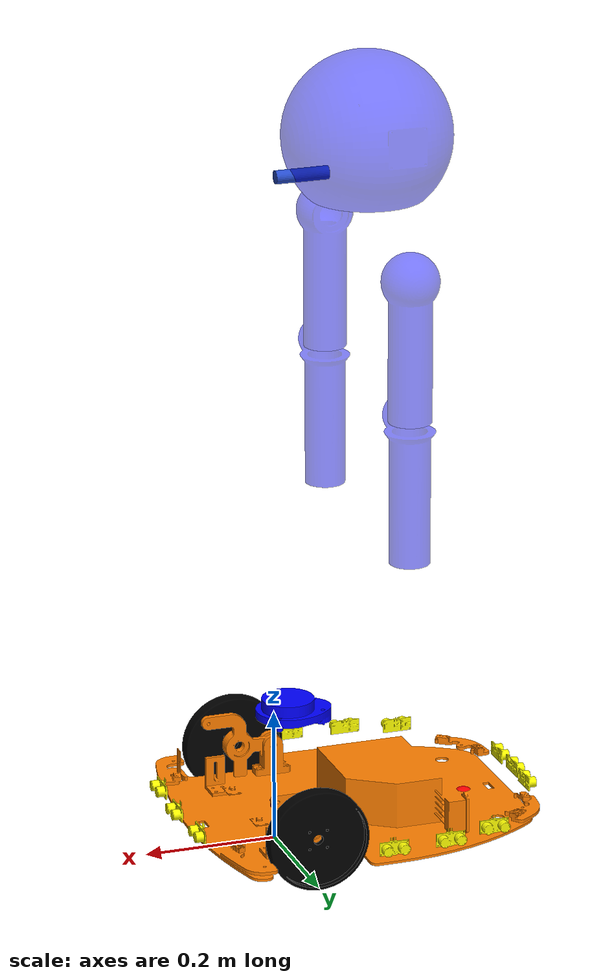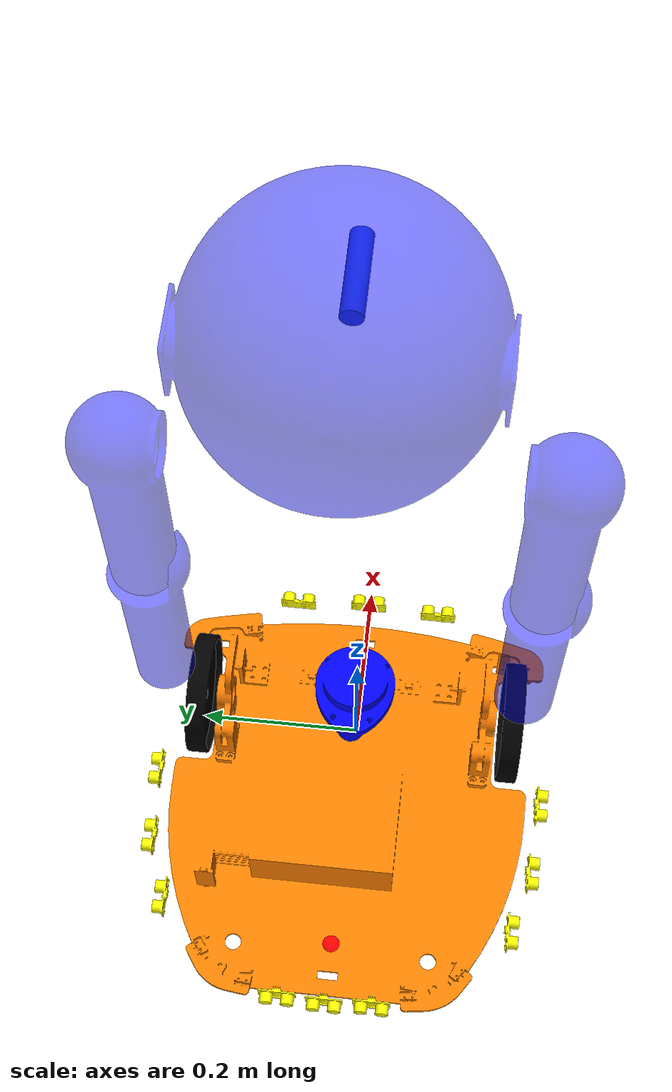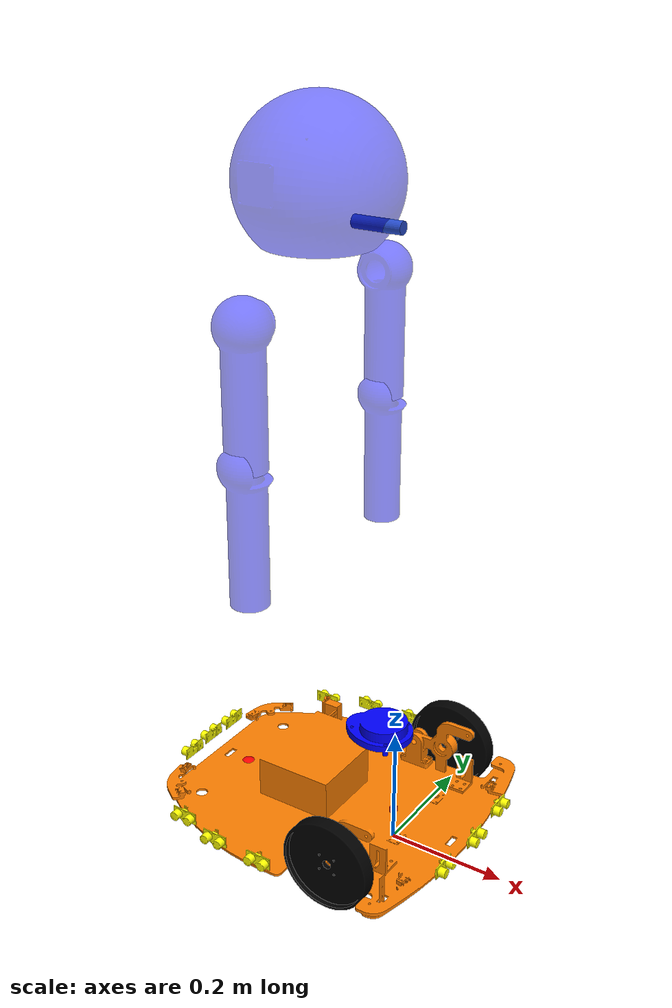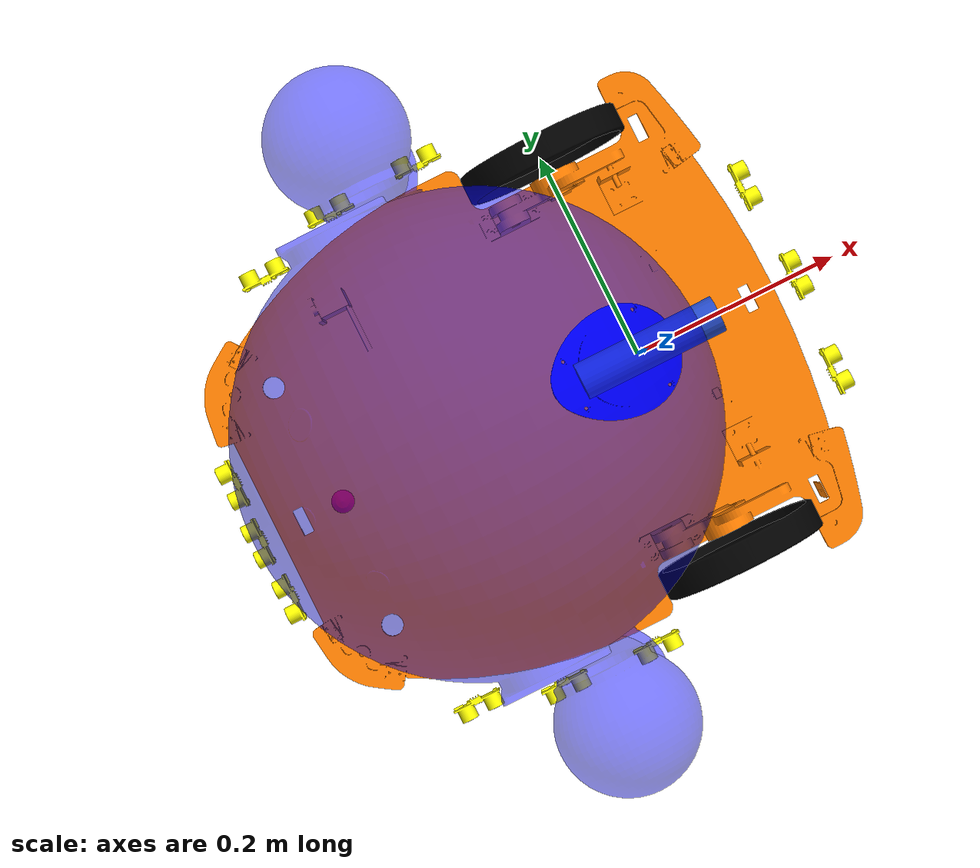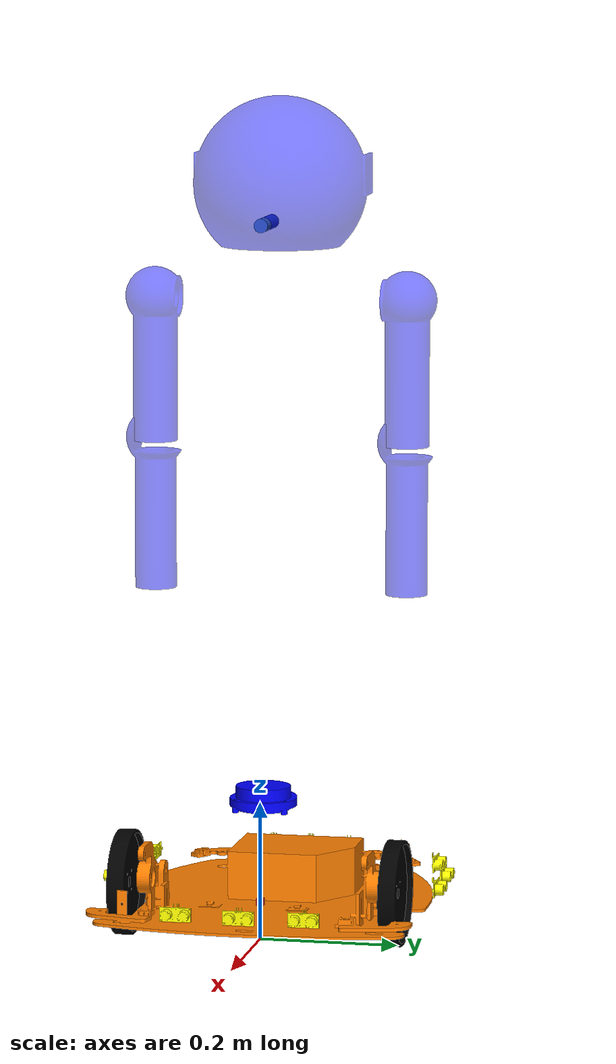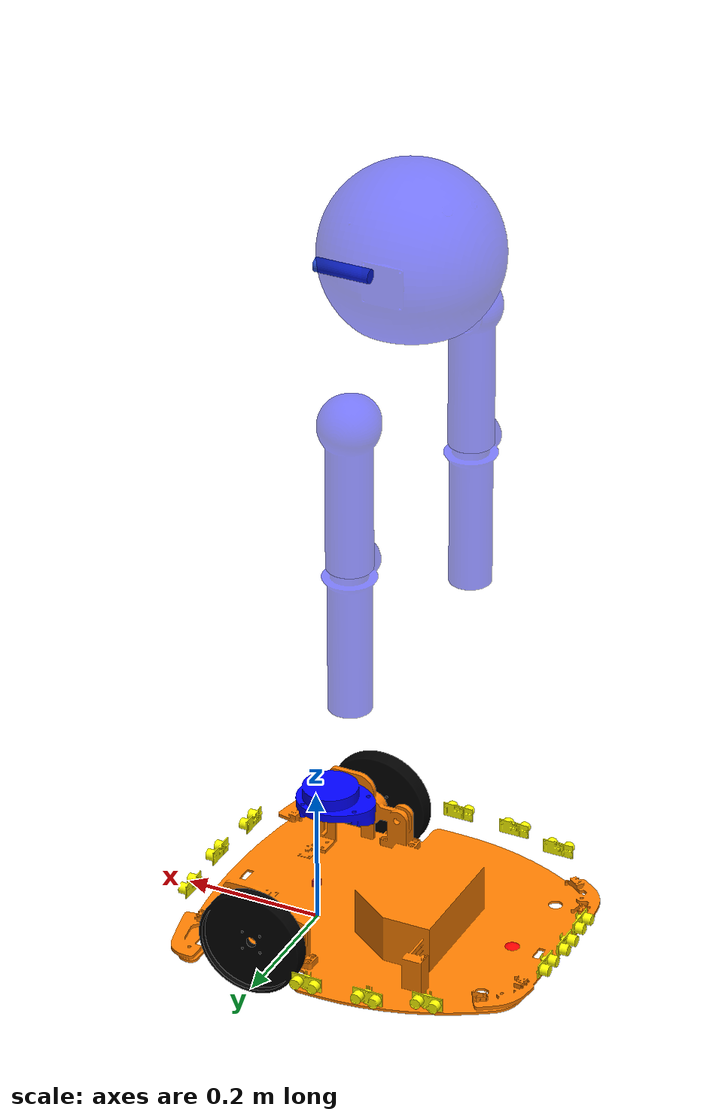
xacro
<?xml version="1.0"?>
<!--
   Created Or Edited on: 23/09/2015
   Author: Zach
           qoogood1234@gmail.com
   Edited on: 29/09/2015
   Author: Dott. Antonio Mauro Galiano
 	   antoniomauro.galiano@gmail.com
-->
<robot xmlns:xacro="http://www.ros.org/wiki/xacro" name="andbot">
  <xacro:property name="PI" value="3.1415926535897931"/>
  <xacro:property name="length_wheel" value="0.0254"/>
  <xacro:property name="radius_wheel" value="0.076"/>
  <xacro:property name="distance_between_wheels" value="0.393"/>
  <xacro:property name="height_wheels_from_base" value="0.0392"/>

 <arg name="gui" value="true"/>
  <!-- Base footprint link-->
  <link name="base_footprint"/>

  <link name="xv11">
    <collision>
      <origin xyz="0 0 -0.019" rpy="1.57 0 -1.57"/>
      <geometry>
        <mesh filename="package://hyperlync_robot/robot_description/mesh/lidar_XV-11.STL"/>
      </geometry>
    </collision>
    <visual>
      <origin xyz="0 0 -0.019" rpy="1.57 0 -1.57"/>
      <geometry>
        <mesh filename="package://hyperlync_robot/robot_description/mesh/lidar_XV-11.STL"/>
      </geometry>
       <material name="Green">
         <color rgba="0 0 1 1"/>
       </material>
    </visual>
    <inertial>
      <origin xyz="0 0 0.07" rpy="0 0 0"/>
      <mass value="0.1"/>
      <inertia ixx="0.2" ixy="0" ixz="0" iyy="0.2" iyz="0" izz="0.3"/>
    </inertial>
  </link>
  <gazebo reference="xv11">
    <material>Gazebo/Green</material>
  </gazebo>

  <joint name="xv11_fixed" type="fixed">
    <parent link="base_footprint"/>
    <child link="xv11"/>

<!--    plastic model     -->

<origin xyz="-0.022 0 ${radius_wheel+0.135}" rpy="0 0 0"/>

<!--	metal model	-->
  </joint>

<joint name="IMU_joint" type="fixed">
    <axis xyz="1 0 0"/>
        <origin xyz="0.0 0.0 0.055"/>
	    <parent link="base_link"/>
	    <child link="IMU_link"/>
</joint>

<link name="IMU_link">
  <inertial>
      <mass value="0.001"/>
          <origin rpy="0 0 0" xyz="0 0 0"/>
	      <inertia ixx="0.0001" ixy="0" ixz="0" iyy="0.000001" iyz="0" izz="0.0001"/>
  </inertial>
  <visual>
	<origin rpy="0 0 0" xyz="0 0 0"/>
          <geometry>
	       <box size="0.01 0.01 0.01"/>
	  </geometry>
        <material name="red"/>
	  </visual>
	    <collision>
	    <origin rpy="0 0 0" xyz="0 0 0"/>
		 <geometry>
	          <box size=".01 .01 .01"/>
		 </geometry>
	    </collision>
</link>

<!-- Base link -->
  <link name="base_link">
    <collision>
      <origin xyz="0 0 ${radius_wheel-height_wheels_from_base}" rpy="0 0 0"/>
      <geometry>
        <mesh filename="package://hyperlync_robot/robot_description/mesh/base_part.STL"/>
      </geometry>
    </collision>
    <visual>
      <origin xyz="0 0 ${radius_wheel-height_wheels_from_base}" rpy="0 0 0"/>
      <geometry>
        <mesh filename="package://hyperlync_robot/robot_description/mesh/base_part.STL"/>
      </geometry>
       <material name="Orange">
         <color rgba="1 0.5 0 1"/>
       </material>
    </visual>
    <inertial>
      <origin xyz="0 0 0.07" rpy="0 0 0"/>
      <mass value="52"/>
      <inertia ixx="0.248" ixy="0" ixz="0" iyy="0.748" iyz="0" izz="0.748"/>
    </inertial>
  </link>
  <gazebo reference="base_link">
    <material>Gazebo/Orange</material>
  </gazebo>

  <!-- Base footprint link / Base link joint -->
  <joint name="base_joint" type="fixed">
    <parent link="base_footprint"/>
    <child link="base_link"/>
  </joint>

   <!-- Caster wheel link -->
  <link name="caster_wheel">
    <collision>
      <origin xyz="0 0 0" rpy="0 0 0"/>
      <geometry>
        <sphere radius="0.02"/>
      </geometry>
    </collision>
    <visual>
      <origin xyz="0 0 0" rpy="0 0 0"/>
      <geometry>
        <sphere radius="0.02"/>
      </geometry>
       <material name="White">
         <color rgba="1 0 0 1"/>
       </material>
    </visual>
    <inertial>
      <origin xyz="0 0 0" rpy="0 0 0"/>
      <mass value="0.05"/>
      <inertia ixx="0.0098" ixy="0" ixz="0" iyy="0.0098" iyz="0" izz="0.0098"/>
    </inertial>
  </link>
  <gazebo reference="caster_wheel">
    <mu1>0.04</mu1>
    <mu2>0.04</mu2>
    <material>Gazebo/White</material>
  </gazebo>

  <!-- Base link / Caster wheel joint -->
  <joint name="fixed" type="fixed">
    <parent link="base_link"/>
    <child link="caster_wheel"/>
    <origin xyz="-0.3 0 0.02" rpy="0 0 0"/>
  </joint>

  <!-- Body link -->
  <!-- Head link -->
  <link name="head_link">
    <collision>
      <origin xyz="0 0 0" rpy="0 0 0"/>
      <geometry>
        <mesh filename="package://hyperlync_robot/robot_description/mesh/head.STL"/>
      </geometry>
    </collision>
    <visual>
      <origin xyz="0 0 0" rpy="0 0 0"/>
      <geometry>
        <mesh filename="package://hyperlync_robot/robot_description/mesh/head.STL"/>
      </geometry>
       <material name="Blue">
         <color rgba="0 0 1 0.5"/>
       </material>
    </visual>
    <inertial>
      <origin xyz="0 0 0.0" rpy="0 0 0"/>
      <mass value="1.5"/>
      <inertia ixx="0.248" ixy="0" ixz="0" iyy="0.248" iyz="0" izz="0.008"/>
    </inertial>
  </link>
  <gazebo reference="head_link">
    <material>Gazebo/Blue</material>
  </gazebo>

  <!-- Base link /Head Link joint -->
  <joint name="head_joint" type="continuous">
    <parent link="base_link"/>
    <child link="head_link"/>
    <origin xyz="-0.145 0 1.075" rpy="0 0 0"/>
    <axis xyz="0 0 1"/>
          <limit upper="1.57" lower="-1.57" velocity="10" effort="7"/>
	  <joint_properties damping="0.0" friction="0.0"/>

  </joint>
  <!-- Transmission for laser joint -->
  <transmission name="head_trans">
    <type>transmission_interface/SimpleTransmission</type>
    <joint name="head_joint">
      <hardwareInterface>EffortJointInterface</hardwareInterface>
    </joint>
    <actuator name="headMotor">
      <hardwareInterface>EffortJointInterface</hardwareInterface>
      <mechanicalWhiteuction>1</mechanicalWhiteuction>
    </actuator>
  </transmission>

  <!-- left_arm_link1 link -->
  <link name="left_arm_link1">
    <collision>
      <origin xyz="0 0 0" rpy="-1.5707 1.5707 0"/>
      <geometry>
        <mesh filename="package://hyperlync_robot/robot_description/mesh/arm_link1.STL"/>
      </geometry>
    </collision>
    <visual>
      <origin xyz="0 0 0" rpy="-1.5707 1.5707 0"/>
      <geometry>
        <mesh filename="package://hyperlync_robot/robot_description/mesh/arm_link1.STL"/>
      </geometry>
       <material name="Blue">
         <color rgba="0 0 1 0.5"/>
       </material>
    </visual>
    <inertial>
      <origin xyz="0 0 0.00" rpy="0 0 0"/>
      <mass value="0.75"/>
      <inertia ixx="0.148" ixy="0" ixz="0" iyy="0.148" iyz="0" izz="0.748"/>
    </inertial>
  </link>
  <gazebo reference="left_arm_link1">
    <material>Gazebo/Blue</material>
  </gazebo>

  <!-- Base link /left_arm_link1 Link joint -->
  <joint name="left_arm_link1_joint" type="fixed">
    <parent link="base_link"/>
    <child link="left_arm_link1"/>
    <origin xyz="-0.145 0.185 0.909" rpy="0 0 0"/>
  </joint>

  <!-- Left left_arm_link2 link -->
  <link name="left_arm_link2">
    <collision>
      <origin xyz="0 0 0" rpy="-1.5707 1.5707 0"/>
      <geometry>
        <mesh filename="package://hyperlync_robot/robot_description/mesh/arm_link2.STL"/>
      </geometry>
    </collision>
    <visual>
      <origin xyz="0 0 0" rpy="-1.5707 1.5707 0"/>
      <geometry>
        <mesh filename="package://hyperlync_robot/robot_description/mesh/arm_link2.STL"/>
      </geometry>
       <material name="Blue">
         <color rgba="0 0 1 0.5"/>
       </material>
    </visual>
    <inertial>
      <origin xyz="0 0 0.00" rpy="0 0 0"/>
      <mass value="0.75"/>
      <inertia ixx="0.148" ixy="0" ixz="0" iyy="0.148" iyz="0" izz="0.748"/>
    </inertial>
  </link>
  <gazebo reference="left_arm_link2">
    <material>Gazebo/Blue</material>
  </gazebo>

  <!-- Base link /Left_arm_link2 Link joint -->
  <joint name="left_arm_link2_joint" type="fixed">
    <parent link="left_arm_link1"/>
    <child link="left_arm_link2"/>
    <origin xyz="0 0 -0.205" rpy="0 0 0"/>
  </joint>

  <!-- right_arm_link1 link -->
  <link name="right_arm_link1">
    <collision>
      <origin xyz="0 0 0" rpy="1.57 1.5707 0"/>
      <geometry>
        <mesh filename="package://hyperlync_robot/robot_description/mesh/arm_link1.STL"/>
      </geometry>
    </collision>
    <visual>
      <origin xyz="0 0 0" rpy="1.57 1.5707 0"/>
      <geometry>
        <mesh filename="package://hyperlync_robot/robot_description/mesh/arm_link1.STL"/>
      </geometry>
       <material name="Blue">
         <color rgba="0 0 1 0.5"/>
       </material>
    </visual>
    <inertial>
      <origin xyz="0 0 0.00" rpy="0 0 0"/>
      <mass value="0.75"/>
      <inertia ixx="0.148" ixy="0" ixz="0" iyy="0.148" iyz="0" izz="0.748"/>
    </inertial>
  </link>
  <gazebo reference="right_arm_link1">
    <material>Gazebo/Blue</material>
  </gazebo>

  <!-- Base link /Right arm_link1 Link joint -->
  <joint name="right_arm_link1_joint" type="fixed">
    <parent link="base_link"/>
    <child link="right_arm_link1"/>
    <origin xyz="-0.145 -0.185 0.909" rpy="0 0 0"/>
  </joint>

  <!-- right_arm_link2 link -->
  <link name="right_arm_link2">
    <collision>
      <origin xyz="0 0 0" rpy="-1.5707 1.5707 3.14"/>
      <geometry>
        <mesh filename="package://hyperlync_robot/robot_description/mesh/arm_link2.STL"/>
      </geometry>
    </collision>
    <visual>
      <origin xyz="0 0 0" rpy="-1.5707 1.5707 0"/>
      <geometry>
        <mesh filename="package://hyperlync_robot/robot_description/mesh/arm_link2.STL"/>
      </geometry>
       <material name="Blue">
         <color rgba="0 0 1 0.5"/>
       </material>
    </visual>
    <inertial>
      <origin xyz="0 0 0.00" rpy="0 0 0"/>
      <mass value="0.75"/>
      <inertia ixx="0.148" ixy="0" ixz="0" iyy="0.148" iyz="0" izz="0.748"/>
    </inertial>
  </link>
  <gazebo reference="right_arm_link2">
    <material>Gazebo/Blue</material>
  </gazebo>

  <!-- Base link /right_arm_link2 Link joint -->
  <joint name="right_arm_link2_joint" type="fixed">
    <parent link="right_arm_link1"/>
    <child link="right_arm_link2"/>
    <origin xyz="0 0 -0.205" rpy="0 0 0"/>
  </joint>

  <!-- Base link / Laser link joint -->
  <joint name="laser_joint" type="fixed">
    <parent link="head_link"/>
    <child link="laser"/>
    <origin xyz="0.1 0 -0.05" rpy="0 0 0"/>
  </joint>

  <!-- Laser link -->
  <link name="laser">
    <collision>
      <origin xyz="0 0 0" rpy="0 1.57 0"/>
      <geometry>
        <cylinder length="0.08" radius="0.01"/>
      </geometry>
    </collision>
    <visual>
      <origin xyz="0 0 0" rpy="0 1.57 0"/>
      <geometry>
        <cylinder length="0.08" radius="0.01"/>
      </geometry>
    </visual>
    <inertial>
      <mass value="0.002"/>
      <origin xyz="0 0 0" rpy="0 0 0"/>
      <inertia ixx="1e-6" ixy="0" ixz="0" iyy="1e-6" iyz="0" izz="0.01"/>
    </inertial>
  </link>
  <gazebo reference="laser">
    <mu1 value="5.0"/>
    <mu2 value="5.0"/>
    <kp value="10000000.0"/>
    <kd value="1.0"/>
  </gazebo>

  <!-- Left wheel link -->
  <link name="left_wheel">
    <collision>
      <origin xyz="0 0 0" rpy="0 1.570795 1.570795"/>
      <geometry>
        <mesh filename="package://hyperlync_robot/robot_description/mesh/wheel-D152_SMALL.STL"/>
      </geometry>
    </collision>
    <visual>
      <origin xyz="0 0 0" rpy="0 1.570795 1.570795"/>
      <geometry>
        <mesh filename="package://hyperlync_robot/robot_description/mesh/wheel-D152_SMALL.STL"/>
      </geometry>
       <material name="Black">
         <color rgba="0 0 0 1"/>
       </material>
    </visual>
    <inertial>
      <origin xyz="0 0 0" rpy="0 1.570795 1.570795"/>
      <mass value="0.4"/>
      <inertia ixx="0.0135" ixy="0" ixz="0" iyy="0.0135" iyz="0" izz="0.025"/>
    </inertial>
  </link>
  <gazebo reference="left_wheel">
    <mu1 value="2.0"/>
    <mu2 value="2.0"/>
    <kp value="10000000.0"/>
    <kd value="1.0"/>
    <material>Gazebo/Black</material>
  </gazebo>

  <!-- Base link / Left wheel link joint -->
  <joint name="left_wheel_hinge" type="continuous">
    <parent link="base_link"/>
    <child link="left_wheel"/>
    <origin rpy="0 0 0" xyz="0 ${distance_between_wheels/2} ${radius_wheel}"/>

    <axis xyz="0 1 0" rpy="0 0 0"/>
    <limit effort="100" velocity="100"/>
    <joint_properties damping="0.0" friction="0.0"/>
  </joint>
  <!-- Left wheel transmission -->
  <transmission name="left_trans">
    <type>transmission_interface/SimpleTransmission</type>
    <joint name="left_wheel_hinge">
      <hardwareInterface>EffortJointInterface</hardwareInterface>
    </joint>
    <actuator name="leftMotor">
      <hardwareInterface>EffortJointInterface</hardwareInterface>
      <mechanicalWhiteuction>1</mechanicalWhiteuction>
    </actuator>
  </transmission>

  <!-- Right wheel link -->
  <link name="right_wheel">
    <collision>
      <origin xyz="0 0 0" rpy="0 1.570795 1.570795"/>
      <geometry>
        <mesh filename="package://hyperlync_robot/robot_description/mesh/wheel-D152_SMALL.STL"/>
      </geometry>
    </collision>
    <visual>
      <origin xyz="0 0 0" rpy="0 1.570795 1.570795"/>
      <geometry>
        <mesh filename="package://hyperlync_robot/robot_description/mesh/wheel-D152_SMALL.STL"/>
      </geometry>
       <material name="Black">
         <color rgba="0 0 0 1"/>
       </material>
    </visual>
    <inertial>
      <origin xyz="0 0 0" rpy="0 1.570795 1.570795"/>
      <mass value="0.4"/>
      <inertia ixx="0.0135" ixy="0" ixz="0" iyy="0.0135" iyz="0" izz="0.025"/>
    </inertial>
  </link>
  <gazebo reference="right_wheel">
    <mu1 value="2.0"/>
    <mu2 value="2.0"/>
    <kp value="10000000.0"/>
    <kd value="1.0"/>
    <material>Gazebo/Black</material>
  </gazebo>

  <!-- Base link / Right wheel link joint -->
  <joint name="right_wheel_hinge" type="continuous">
    <parent link="base_link"/>
    <child link="right_wheel"/>
    <origin rpy="0 0 0" xyz="0 ${-distance_between_wheels/2} ${radius_wheel}"/>

    <axis xyz="0 1 0" rpy="0 0 0"/>
    <limit effort="100" velocity="100"/>
    <joint_properties damping="0.0" friction="0.0"/>
  </joint>
  <!-- Right wheel transmission -->
  <transmission name="right_trans">
    <type>transmission_interface/SimpleTransmission</type>
    <joint name="right_wheel_hinge">
      <hardwareInterface>EffortJointInterface</hardwareInterface>
    </joint>
    <actuator name="rightMotor">
      <hardwareInterface>EffortJointInterface</hardwareInterface>
      <mechanicalWhiteuction>1</mechanicalWhiteuction>
    </actuator>
  </transmission>

<!--Sonar Link -->
  <!-- Base link / sonar1 link joint -->
  <joint name="sonar_1_fixed" type="fixed">
    <parent link="base_link"/>
    <child link="sonar_1"/>
    <origin xyz="0.15 0 ${0.03475+0.029}" rpy="0 0 0"/>
  </joint>

<!--Sonar Link1-->
  <link name="sonar_1">
    <collision>
      <origin xyz="0 0 0" rpy="0 0 0"/>
      <geometry>
        <mesh filename="package://hyperlync_robot/robot_description/mesh/sonar_HC_SR04.STL"/>
      </geometry>
    </collision>
    <visual>
      <origin xyz="0 0 0" rpy="0 0 0"/>
      <geometry>
        <mesh filename="package://hyperlync_robot/robot_description/mesh/sonar_HC_SR04.STL"/>
      </geometry>
       <material name="Yellow">
         <color rgba=" 1 1 0 1"/>
       </material>
    </visual>
    <inertial>
      <origin xyz="0 0 0" rpy="0 0 0"/>
      <mass value="0.1"/>
      <inertia ixx="0.0135" ixy="0" ixz="0" iyy="0.0135" iyz="0" izz="0.025"/>
    </inertial>
  </link>
  <gazebo reference="sonar_link1">
    <mu1 value="2.0"/>
    <mu2 value="2.0"/>
    <kp value="10000000.0"/>
    <kd value="1.0"/>
    <material>Gazebo/Yellow</material>
  </gazebo>

<!--Sonar Link 2-->
  <!-- Base link / sonar2 link joint -->
  <joint name="sonar_2_fixed" type="fixed">
    <parent link="base_link"/>
    <child link="sonar_2"/>
    <origin xyz="0.14456 0.09192 ${0.03475+0.029}"  rpy="0 0 0"/>
  </joint>

<!--Sonar Link2-->
  <link name="sonar_2">
    <collision>
      <origin xyz="0 0 0" rpy="0 0 0"/>
      <geometry>
        <mesh filename="package://hyperlync_robot/robot_description/mesh/sonar_HC_SR04.STL"/>
      </geometry>
    </collision>
    <visual>
      <origin xyz="0 0 0" rpy="0 0 0"/>
      <geometry>
        <mesh filename="package://hyperlync_robot/robot_description/mesh/sonar_HC_SR04.STL"/>
      </geometry>
       <material name="Yellow">
         <color rgba=" 1 1 0 1"/>
       </material>
    </visual>
    <inertial>
      <origin xyz="0 0 0" rpy="0 0 0"/>
      <mass value="0.1"/>
      <inertia ixx="0.0135" ixy="0" ixz="0" iyy="0.0135" iyz="0" izz="0.025"/>
    </inertial>
  </link>
  <gazebo reference="sonar_link2">
    <mu1 value="2.0"/>
    <mu2 value="2.0"/>
    <kp value="10000000.0"/>
    <kd value="1.0"/>
    <material>Gazebo/Yellow</material>
  </gazebo>

  <!-- Base link / sonar3 link joint -->
  <joint name="sonar_3_fixed" type="fixed">
    <parent link="base_link"/>
    <child link="sonar_3"/>
    <origin xyz="-0.10374 0.23695 ${0.03475+0.029}"  rpy="0 0 1.5707"/>
  </joint>

<!--Sonar Link3-->
  <link name="sonar_3">

    <collision>
      <origin xyz="0 0 0" rpy="0 0 0"/>
      <geometry>
        <mesh filename="package://hyperlync_robot/robot_description/mesh/sonar_HC_SR04.STL"/>
      </geometry>
    </collision>
    <visual>
      <origin xyz="0 0 0" rpy="0 0 0"/>
      <geometry>
        <mesh filename="package://hyperlync_robot/robot_description/mesh/sonar_HC_SR04.STL"/>
      </geometry>
       <material name="Yellow">
         <color rgba=" 1 1 0 1"/>
       </material>
    </visual>
    <inertial>
      <origin xyz="0 0 0" rpy="0 0 0"/>
      <mass value="0.1"/>
      <inertia ixx="0.0135" ixy="0" ixz="0" iyy="0.0135" iyz="0" izz="0.025"/>
    </inertial>
  </link>
  <gazebo reference="sonar_link3">
    <mu1 value="2.0"/>
    <mu2 value="2.0"/>
    <kp value="10000000.0"/>
    <kd value="1.0"/>
    <material>Gazebo/Yellow</material>
  </gazebo>

  <!-- Base link / sonar4 link joint -->
  <joint name="sonar_4_fixed" type="fixed">
    <parent link="base_link"/>
    <child link="sonar_4"/>
    <origin xyz="-0.1931 0.23214 ${0.03475+0.029}"  rpy="0 0 1.5707"/>
  </joint>

<!--Sonar Link4-->
  <link name="sonar_4">
    <collision>
      <origin xyz="0 0 0" rpy="0 0 0"/>
      <geometry>
        <mesh filename="package://hyperlync_robot/robot_description/mesh/sonar_HC_SR04.STL"/>
      </geometry>
    </collision>
    <visual>
      <origin xyz="0 0 0" rpy="0 0 0"/>
      <geometry>
        <mesh filename="package://hyperlync_robot/robot_description/mesh/sonar_HC_SR04.STL"/>
      </geometry>
       <material name="Yellow">
         <color rgba=" 1 1 0 1"/>
       </material>
    </visual>
    <inertial>
      <origin xyz="0 0 0" rpy="0 0 0"/>
      <mass value="0.1"/>
      <inertia ixx="0.0135" ixy="0" ixz="0" iyy="0.0135" iyz="0" izz="0.025"/>
    </inertial>
  </link>
  <gazebo reference="sonar_link4">
    <mu1 value="2.0"/>
    <mu2 value="2.0"/>
    <kp value="10000000.0"/>
    <kd value="1.0"/>
    <material>Gazebo/Yellow</material>
  </gazebo>

  <!-- Base link / sonar5 link joint -->
  <joint name="sonar_5_fixed" type="fixed">
    <parent link="base_link"/>
    <child link="sonar_5"/>
    <origin xyz="-0.27047 0.20726 ${0.03475+0.029}"  rpy="0 0 1.5707"/>
  </joint>

<!--Sonar Link5-->
  <link name="sonar_5">
    <collision>
      <origin xyz="0 0 0" rpy="0 0 0"/>
      <geometry>
        <mesh filename="package://hyperlync_robot/robot_description/mesh/sonar_HC_SR04.STL"/>
      </geometry>
    </collision>
    <visual>
      <origin xyz="0 0 0" rpy="0 0 0"/>
      <geometry>
        <mesh filename="package://hyperlync_robot/robot_description/mesh/sonar_HC_SR04.STL"/>
      </geometry>
       <material name="Yellow">
         <color rgba=" 1 1 0 1"/>
       </material>
    </visual>
    <inertial>
      <origin xyz="0 0 0" rpy="0 0 0"/>
      <mass value="0.1"/>
      <inertia ixx="0.0135" ixy="0" ixz="0" iyy="0.0135" iyz="0" izz="0.025"/>
    </inertial>
  </link>
  <gazebo reference="sonar_link5">
    <mu1 value="2.0"/>
    <mu2 value="2.0"/>
    <kp value="10000000.0"/>
    <kd value="1.0"/>
    <material>Gazebo/Yellow</material>
  </gazebo>

  <!-- Base link / sonar6 link joint -->
  <joint name="sonar_6_fixed" type="fixed">
    <parent link="base_link"/>
    <child link="sonar_6"/>
    <origin xyz="-0.37437 0.05695 ${0.03475+0.029}"  rpy="0 0 3.14"/>
  </joint>

<!--Sonar Link6-->
  <link name="sonar_6">
    <collision>
      <origin xyz="0 0 0" rpy="0 0 0"/>
      <geometry>
        <mesh filename="package://hyperlync_robot/robot_description/mesh/sonar_HC_SR04.STL"/>
      </geometry>
    </collision>
    <visual>
      <origin xyz="0 0 0" rpy="0 0 0"/>
      <geometry>
        <mesh filename="package://hyperlync_robot/robot_description/mesh/sonar_HC_SR04.STL"/>
      </geometry>
       <material name="Yellow">
         <color rgba=" 1 1 0 1"/>
       </material>
    </visual>
    <inertial>
      <origin xyz="0 0 0" rpy="0 0 0"/>
      <mass value="0.1"/>
      <inertia ixx="0.0135" ixy="0" ixz="0" iyy="0.0135" iyz="0" izz="0.025"/>
    </inertial>
  </link>
  <gazebo reference="sonar_link6">
    <mu1 value="2.0"/>
    <mu2 value="2.0"/>
    <kp value="10000000.0"/>
    <kd value="1.0"/>
    <material>Gazebo/Yellow</material>
  </gazebo>

  <!-- Base link / sonar7 link joint -->
  <joint name="sonar_7_fixed" type="fixed">
    <parent link="base_link"/>
    <child link="sonar_7"/>
    <origin xyz="-0.37695 0 ${0.03475+0.029}"  rpy="0 0 3.14"/>
  </joint>

<!--Sonar Link7-->
  <link name="sonar_7">
    <collision>
      <origin xyz="0 0 0" rpy="0 0 0"/>
      <geometry>
        <mesh filename="package://hyperlync_robot/robot_description/mesh/sonar_HC_SR04.STL"/>
      </geometry>
    </collision>
    <visual>
      <origin xyz="0 0 0" rpy="0 0 0"/>
      <geometry>
        <mesh filename="package://hyperlync_robot/robot_description/mesh/sonar_HC_SR04.STL"/>
      </geometry>
       <material name="Yellow">
         <color rgba=" 1 1 0 1"/>
       </material>
    </visual>
    <inertial>
      <origin xyz="0 0 0" rpy="0 0 0"/>
      <mass value="0.1"/>
      <inertia ixx="0.0135" ixy="0" ixz="0" iyy="0.0135" iyz="0" izz="0.025"/>
    </inertial>
  </link>
  <gazebo reference="sonar_link7">
    <mu1 value="2.0"/>
    <mu2 value="2.0"/>
    <kp value="10000000.0"/>
    <kd value="1.0"/>
    <material>Gazebo/Yellow</material>
  </gazebo>

  <!-- Base link / sonar8 link joint -->
  <joint name="sonar_8_fixed" type="fixed">
    <parent link="base_link"/>
    <child link="sonar_8"/>
    <origin xyz="-0.37437 -0.05695 ${0.03475+0.029}"  rpy="0 0 3.14"/>
  </joint>

<!--Sonar Link8-->
  <link name="sonar_8">
    <collision>
      <origin xyz="0 0 0" rpy="0 0 0"/>
      <geometry>
        <mesh filename="package://hyperlync_robot/robot_description/mesh/sonar_HC_SR04.STL"/>
      </geometry>
    </collision>
    <visual>
      <origin xyz="0 0 0" rpy="0 0 0"/>
      <geometry>
        <mesh filename="package://hyperlync_robot/robot_description/mesh/sonar_HC_SR04.STL"/>
      </geometry>
       <material name="Yellow">
         <color rgba=" 1 1 0 1"/>
       </material>
    </visual>
    <inertial>
      <origin xyz="0 0 0" rpy="0 0 0"/>
      <mass value="0.1"/>
      <inertia ixx="0.0135" ixy="0" ixz="0" iyy="0.0135" iyz="0" izz="0.025"/>
    </inertial>
  </link>
  <gazebo reference="sonar_link8">
    <mu1 value="2.0"/>
    <mu2 value="2.0"/>
    <kp value="10000000.0"/>
    <kd value="1.0"/>
    <material>Gazebo/Yellow</material>
  </gazebo>

  <!-- Base link / sonar9 link joint -->
  <joint name="sonar_9_fixed" type="fixed">
    <parent link="base_link"/>
    <child link="sonar_9"/>
    <origin xyz="-0.27047 -0.21205 ${0.03475+0.029}"  rpy="0 0 -1.5707"/>
  </joint>

<!--Sonar Link9-->
  <link name="sonar_9">
    <collision>
      <origin xyz="0 0 0" rpy="0 0 0"/>
      <geometry>
        <mesh filename="package://hyperlync_robot/robot_description/mesh/sonar_HC_SR04.STL"/>
      </geometry>
    </collision>
    <visual>
      <origin xyz="0 0 0" rpy="0 0 0"/>
      <geometry>
        <mesh filename="package://hyperlync_robot/robot_description/mesh/sonar_HC_SR04.STL"/>
      </geometry>
       <material name="Yellow">
         <color rgba=" 1 1 0 1"/>
       </material>
    </visual>
    <inertial>
      <origin xyz="0 0 0" rpy="0 0 0"/>
      <mass value="0.1"/>
      <inertia ixx="0.0135" ixy="0" ixz="0" iyy="0.0135" iyz="0" izz="0.025"/>
    </inertial>
  </link>
  <gazebo reference="sonar_link9">
    <mu1 value="2.0"/>
    <mu2 value="2.0"/>
    <kp value="10000000.0"/>
    <kd value="1.0"/>
    <material>Gazebo/Yellow</material>
  </gazebo>

  <!-- Base link / sonar10 link joint -->
  <joint name="sonar_10_fixed" type="fixed">
    <parent link="base_link"/>
    <child link="sonar_10"/>
    <origin xyz="-0.1931 -0.23214 ${0.03475+0.029}"  rpy="0 0 -1.5707"/>
  </joint>

<!--Sonar Link10-->
  <link name="sonar_10">
    <collision>
      <origin xyz="0 0 0" rpy="0 0 0"/>
      <geometry>
        <mesh filename="package://hyperlync_robot/robot_description/mesh/sonar_HC_SR04.STL"/>
      </geometry>
    </collision>
    <visual>
      <origin xyz="0 0 0" rpy="0 0 0"/>
      <geometry>
        <mesh filename="package://hyperlync_robot/robot_description/mesh/sonar_HC_SR04.STL"/>
      </geometry>
       <material name="Yellow">
         <color rgba=" 1 1 0 1"/>
       </material>
    </visual>
    <inertial>
      <origin xyz="0 0 0" rpy="0 0 0"/>
      <mass value="0.1"/>
      <inertia ixx="0.0135" ixy="0" ixz="0" iyy="0.0135" iyz="0" izz="0.025"/>
    </inertial>
  </link>
  <gazebo reference="sonar_link10">
    <mu1 value="2.0"/>
    <mu2 value="2.0"/>
    <kp value="10000000.0"/>
    <kd value="1.0"/>
    <material>Gazebo/Yellow</material>
  </gazebo>

  <!-- Base link / sonar11 link joint -->
  <joint name="sonar_11_fixed" type="fixed">
    <parent link="base_link"/>
    <child link="sonar_11"/>
    <origin xyz="-0.10374 -0.23695 ${0.03475+0.029}"  rpy="0 0 -1.5707"/>
  </joint>

<!--Sonar Link11-->
  <link name="sonar_11">
    <collision>
      <origin xyz="0 0 0" rpy="0 0 0"/>
      <geometry>
        <mesh filename="package://hyperlync_robot/robot_description/mesh/sonar_HC_SR04.STL"/>
      </geometry>
    </collision>
    <visual>
      <origin xyz="0 0 0" rpy="0 0 0"/>
      <geometry>
        <mesh filename="package://hyperlync_robot/robot_description/mesh/sonar_HC_SR04.STL"/>
      </geometry>
       <material name="Yellow">
         <color rgba=" 1 1 0 1"/>
       </material>
    </visual>
    <inertial>
      <origin xyz="0 0 0" rpy="0 0 0"/>
      <mass value="0.1"/>
      <inertia ixx="0.0135" ixy="0" ixz="0" iyy="0.0135" iyz="0" izz="0.025"/>
    </inertial>
  </link>
  <gazebo reference="sonar_link11">
    <mu1 value="2.0"/>
    <mu2 value="2.0"/>
    <kp value="10000000.0"/>
    <kd value="1.0"/>
    <material>Gazebo/Yellow</material>
  </gazebo>

  <!-- Base link / sonar12 link joint -->
  <joint name="sonar_12_fixed" type="fixed">
    <parent link="base_link"/>
    <child link="sonar_12"/>
    <origin xyz="0.14456 -0.09192 ${0.03475+0.029}"  rpy="0 0 0"/>
  </joint>

<!--Sonar Link12-->
  <link name="sonar_12">
    <collision>
      <origin xyz="0 0 0" rpy="0 0 0"/>
      <geometry>
        <mesh filename="package://hyperlync_robot/robot_description/mesh/sonar_HC_SR04.STL"/>
      </geometry>
    </collision>
    <visual>
      <origin xyz="0 0 0" rpy="0 0 0"/>
      <geometry>
        <mesh filename="package://hyperlync_robot/robot_description/mesh/sonar_HC_SR04.STL"/>
      </geometry>
       <material name="Yellow">
         <color rgba=" 1 1 0 1"/>
       </material>
    </visual>
    <inertial>
      <origin xyz="0 0 0" rpy="0 0 0"/>
      <mass value="0.1"/>
      <inertia ixx="0.0135" ixy="0" ixz="0" iyy="0.0135" iyz="0" izz="0.025"/>
    </inertial>
  </link>
  <gazebo reference="sonar_link12">
    <mu1 value="2.0"/>
    <mu2 value="2.0"/>
    <kp value="10000000.0"/>
    <kd value="1.0"/>
    <material>Gazebo/Yellow</material>
  </gazebo>

  <!-- Gazebo ROS control plugin -->
  <gazebo>
    <plugin name="gazebo_ros_control" filename="libgazebo_ros_control.so">
      <robotNamespace>/andbot</robotNamespace>
    </plugin>
  </gazebo>
  <!-- Differential drive plugin -->
  <gazebo>
    <plugin name="differential_drive_controller" filename="libgazebo_ros_diff_drive.so">
      <alwaysOn>true</alwaysOn>
      <updateRate>100</updateRate>
      <leftJoint>right_wheel_hinge</leftJoint>
      <rightJoint>left_wheel_hinge</rightJoint>
      <wheelSeparation>${distance_between_wheels}</wheelSeparation>
      <wheelDiameter>${2*radius_wheel}</wheelDiameter>
      <torque>30</torque>
      <commandTopic>andbot/cmd_vel</commandTopic>
      <odometryTopic>andbot/odom_diffdrive</odometryTopic>
      <odometryFrame>odom</odometryFrame>
      <robotBaseFrame>base_footprint</robotBaseFrame>
    </plugin>
  </gazebo>

<!-- Laser plugin -->
  <gazebo reference="laser">
    <mu1>1.0</mu1>
    <mu2>1.0</mu2>
    <material>Gazebo/Blue</material>
    <sensor type="ray" name="head_hokuyo_sensor">
      <pose>0 0 0 0 0 0</pose>
      <visualize>true</visualize>
      <update_rate>50</update_rate>
      <ray>
        <scan>
          <horizontal>
            <samples>2</samples>
            <resolution>1</resolution>
            <min_angle>-0.001</min_angle>
            <max_angle>0.001</max_angle>
          </horizontal>
        </scan>
        <range>
          <min>0.10</min>
          <max>30.0</max>
          <resolution>0.01</resolution>
        </range>
        <noise>
          <type>gaussian</type>
          <mean>0.0</mean>
          <stddev>0.00</stddev>
        </noise>
      </ray>
      <plugin name="gazebo_ros_head_hokuyo_controller" filename="libgazebo_ros_laser.so">
        <topicName>scan</topicName>
        <frameName>laser</frameName>
      </plugin>
    </sensor>
  </gazebo>

<!-- xv11 plugin -->
  <gazebo reference="xv11">
    <mu1>1.0</mu1>
    <mu2>1.0</mu2>
    <material>Gazebo/Blue</material>
    <sensor type="ray" name="xv11_sensor">
      <pose>0 0 0 0 0 0</pose>
      <visualize>true</visualize>
      <update_rate>40</update_rate>
      <ray>
        <scan>
          <horizontal>
            <samples>180</samples>
            <resolution>1</resolution>
            <min_angle>-1.57</min_angle>
            <max_angle>1.57</max_angle>
          </horizontal>
        </scan>
        <range>
          <min>0.15</min>
          <max>6.0</max>
          <resolution>0.01</resolution>
        </range>
        <noise>
          <type>gaussian</type>
          <mean>0.0</mean>
          <stddev>0.00</stddev>
        </noise>
      </ray>
      <plugin name="gazebo_ros_head_hokuyo_controller" filename="libgazebo_ros_laser.so">
        <topicName>xv11_scan</topicName>
        <frameName>xv11</frameName>
      </plugin>
    </sensor>
  </gazebo>

 <!-- Proximity sensor plugin TO DO-->
  <gazebo reference="sonar_1">
    <sensor name ="sonar1" type="ray">
       <pose>0 0 0 0 0 0</pose>
      <update_rate>20</update_rate>
      <visualize>true</visualize>
      <ray>
        <scan>
          <horizontal>
            <samples>5</samples>
            <resolution>1</resolution>
            <min_angle>-0.24</min_angle>
            <max_angle>-0.16</max_angle>
          </horizontal>
          <vertical>
            <samples>5</samples>
            <resolution>1</resolution>
            <min_angle>-0.33</min_angle>
            <max_angle>-0.13</max_angle>
          </vertical>
        </scan>
        <range>
          <min>0.02</min>
          <max>3</max>
          <resolution>1</resolution>
        </range>
      </ray>
      <plugin filename="libgazebo_ros_range.so" name="gazebo_ros_range">
        <gaussianNoise>0.05</gaussianNoise>
        <alwaysOn>true</alwaysOn>
        <updateRate>20</updateRate>
        <topicName>sonar1</topicName>
        <frameName>sonar_1</frameName>
        <minRange>0.02</minRange>
        <maxRange>3</maxRange>
        <fov>0.5235987755982988</fov>
        <radiation>ultrasound</radiation>
      </plugin>
    </sensor>
  </gazebo>
  <gazebo reference="sonar_2">
    <sensor name ="sonar2" type="ray">
       <pose>0 0 0 0 0 0</pose>
      <update_rate>20</update_rate>
      <visualize>true</visualize>
      <ray>
        <scan>
          <horizontal>
            <samples>5</samples>
            <resolution>1</resolution>
            <min_angle>-0.24</min_angle>
            <max_angle>-0.16</max_angle>
          </horizontal>
          <vertical>
            <samples>5</samples>
            <resolution>1</resolution>
            <min_angle>-0.33</min_angle>
            <max_angle>-0.13</max_angle>
          </vertical>
        </scan>
        <range>
          <min>0.02</min>
          <max>4</max>
          <resolution>1</resolution>
        </range>
      </ray>
      <plugin filename="libgazebo_ros_range.so" name="gazebo_ros_range">
        <gaussianNoise>0.05</gaussianNoise>
        <alwaysOn>true</alwaysOn>
        <updateRate>20</updateRate>
        <topicName>sonar2</topicName>
        <frameName>sonar_2</frameName>
        <minRange>0.02</minRange>
        <maxRange>3</maxRange>
        <fov>0.5235987755982988</fov>
        <radiation>ultrasound</radiation>
      </plugin>
    </sensor>
  </gazebo>
 <gazebo reference="sonar_3">
    <sensor name ="sonar3" type="ray">
       <pose>0 0 0 0 0 0</pose>
      <update_rate>20</update_rate>
      <visualize>true</visualize>
      <ray>
        <scan>
          <horizontal>
            <samples>5</samples>
            <resolution>1</resolution>
            <min_angle>-0.24</min_angle>
            <max_angle>-0.16</max_angle>
          </horizontal>
          <vertical>
            <samples>5</samples>
            <resolution>1</resolution>
            <min_angle>-0.33</min_angle>
            <max_angle>-0.13</max_angle>
          </vertical>
        </scan>
        <range>
          <min>0.02</min>
          <max>3</max>
          <resolution>1</resolution>
        </range>
      </ray>
      <plugin filename="libgazebo_ros_range.so" name="gazebo_ros_range">
        <gaussianNoise>0.05</gaussianNoise>
        <alwaysOn>true</alwaysOn>
        <updateRate>20</updateRate>
        <topicName>sonar3</topicName>
        <frameName>sonar_3</frameName>
        <minRange>0.02</minRange>
        <maxRange>3</maxRange>
        <fov>0.5235987755982988</fov>
        <radiation>ultrasound</radiation>
      </plugin>
    </sensor>
  </gazebo>
<gazebo reference="sonar_4">
    <sensor name ="sonar4" type="ray">
       <pose>0 0 0 0 0 0</pose>
      <update_rate>20</update_rate>
      <visualize>true</visualize>
      <ray>
        <scan>
          <horizontal>
            <samples>5</samples>
            <resolution>1</resolution>
            <min_angle>-0.24</min_angle>
            <max_angle>-0.16</max_angle>
          </horizontal>
          <vertical>
            <samples>5</samples>
            <resolution>1</resolution>
            <min_angle>-0.33</min_angle>
            <max_angle>-0.13</max_angle>
          </vertical>
        </scan>
        <range>
          <min>0.02</min>
          <max>3</max>
          <resolution>1</resolution>
        </range>
      </ray>
      <plugin filename="libgazebo_ros_range.so" name="gazebo_ros_range">
        <gaussianNoise>0.05</gaussianNoise>
        <alwaysOn>true</alwaysOn>
        <updateRate>20</updateRate>
        <topicName>sonar4</topicName>
        <frameName>sonar_4</frameName>
        <minRange>0.02</minRange>
        <maxRange>3</maxRange>
        <fov>0.5235987755982988</fov>
        <radiation>ultrasound</radiation>
      </plugin>
    </sensor>
  </gazebo>
<gazebo reference="sonar_5">
    <sensor name ="sonar5" type="ray">
       <pose>0 0 0 0 0 0</pose>
      <update_rate>20</update_rate>
      <visualize>true</visualize>
      <ray>
        <scan>
          <horizontal>
            <samples>5</samples>
            <resolution>1</resolution>
            <min_angle>-0.24</min_angle>
            <max_angle>-0.16</max_angle>
          </horizontal>
          <vertical>
            <samples>5</samples>
            <resolution>1</resolution>
            <min_angle>-0.33</min_angle>
            <max_angle>-0.13</max_angle>
          </vertical>
        </scan>
        <range>
          <min>0.02</min>
          <max>3</max>
          <resolution>1</resolution>
        </range>
      </ray>
      <plugin filename="libgazebo_ros_range.so" name="gazebo_ros_range">
        <gaussianNoise>0.05</gaussianNoise>
        <alwaysOn>true</alwaysOn>
        <updateRate>20</updateRate>
        <topicName>sonar5</topicName>
        <frameName>sonar_5</frameName>
        <minRange>0.022</minRange>
        <maxRange>3</maxRange>
        <fov>0.5235987755982988</fov>
        <radiation>ultrasound</radiation>
      </plugin>
    </sensor>
  </gazebo>
<gazebo reference="sonar_6">
    <sensor name ="sonar6" type="ray">
       <pose>0 0 0 0 0 0</pose>
      <update_rate>20</update_rate>
      <visualize>true</visualize>
      <ray>
        <scan>
          <horizontal>
            <samples>5</samples>
            <resolution>1</resolution>
            <min_angle>-0.24</min_angle>
            <max_angle>-0.16</max_angle>
          </horizontal>
          <vertical>
            <samples>5</samples>
            <resolution>1</resolution>
            <min_angle>-0.33</min_angle>
            <max_angle>-0.13</max_angle>
          </vertical>
        </scan>
        <range>
          <min>0.02</min>
          <max>3</max>
          <resolution>1</resolution>
        </range>
      </ray>
      <plugin filename="libgazebo_ros_range.so" name="gazebo_ros_range">
        <gaussianNoise>0.05</gaussianNoise>
        <alwaysOn>true</alwaysOn>
        <updateRate>20</updateRate>
        <topicName>sonar6</topicName>
        <frameName>sonar_6</frameName>
        <minRange>0.02</minRange>
        <maxRange>3</maxRange>
        <fov>0.5235987755982988</fov>
        <radiation>ultrasound</radiation>
      </plugin>
    </sensor>
  </gazebo>
<gazebo reference="sonar_7">
    <sensor name ="sonar7" type="ray">
       <pose>0 0 0 0 0 0</pose>
      <update_rate>20</update_rate>
      <visualize>true</visualize>
      <ray>
        <scan>
          <horizontal>
            <samples>5</samples>
            <resolution>1</resolution>
            <min_angle>-0.24</min_angle>
            <max_angle>-0.16</max_angle>
          </horizontal>
          <vertical>
            <samples>5</samples>
            <resolution>1</resolution>
            <min_angle>-0.33</min_angle>
            <max_angle>-0.13</max_angle>
          </vertical>
        </scan>
        <range>
          <min>0.02</min>
          <max>3</max>
          <resolution>1</resolution>
        </range>
      </ray>
      <plugin filename="libgazebo_ros_range.so" name="gazebo_ros_range">
        <gaussianNoise>0.05</gaussianNoise>
        <alwaysOn>true</alwaysOn>
        <updateRate>20</updateRate>
        <topicName>sonar7</topicName>
        <frameName>sonar_7</frameName>
        <minRange>0.02</minRange>
        <maxRange>3</maxRange>
        <fov>0.5235987755982988</fov>
        <radiation>ultrasound</radiation>
      </plugin>
    </sensor>
  </gazebo>
<gazebo reference="sonar_8">
    <sensor name ="sonar8" type="ray">
       <pose>0 0 0 0 0 0</pose>
      <update_rate>20</update_rate>
      <visualize>true</visualize>
      <ray>
        <scan>
          <horizontal>
            <samples>5</samples>
            <resolution>1</resolution>
            <min_angle>-0.24</min_angle>
            <max_angle>-0.16</max_angle>
          </horizontal>
          <vertical>
            <samples>5</samples>
            <resolution>1</resolution>
            <min_angle>-0.33</min_angle>
            <max_angle>-0.13</max_angle>
          </vertical>
        </scan>
        <range>
          <min>0.02</min>
          <max>3</max>
          <resolution>1</resolution>
        </range>
      </ray>
      <plugin filename="libgazebo_ros_range.so" name="gazebo_ros_range">
        <gaussianNoise>0.05</gaussianNoise>
        <alwaysOn>true</alwaysOn>
        <updateRate>20</updateRate>
        <topicName>sonar8</topicName>
        <frameName>sonar_8</frameName>
        <minRange>0.02</minRange>
        <maxRange>3</maxRange>
        <fov>0.5235987755982988</fov>
        <radiation>ultrasound</radiation>
      </plugin>
    </sensor>
  </gazebo>

<gazebo reference="sonar_9">
    <sensor name ="sonar9" type="ray">
       <pose>0 0 0 0 0 0</pose>
      <update_rate>20</update_rate>
      <visualize>true</visualize>
      <ray>
        <scan>
          <horizontal>
            <samples>5</samples>
            <resolution>1</resolution>
            <min_angle>-0.24</min_angle>
            <max_angle>-0.16</max_angle>
          </horizontal>
          <vertical>
            <samples>5</samples>
            <resolution>1</resolution>
            <min_angle>-0.33</min_angle>
            <max_angle>-0.13</max_angle>
          </vertical>
        </scan>
        <range>
          <min>0.02</min>
          <max>3</max>
          <resolution>1</resolution>
        </range>
      </ray>
      <plugin filename="libgazebo_ros_range.so" name="gazebo_ros_range">
        <gaussianNoise>0.05</gaussianNoise>
        <alwaysOn>true</alwaysOn>
        <updateRate>20</updateRate>
        <topicName>sonar9</topicName>
        <frameName>sonar_9</frameName>
        <minRange>0.02</minRange>
        <maxRange>3</maxRange>
        <fov>0.5235987755982988</fov>
        <radiation>ultrasound</radiation>
      </plugin>
    </sensor>
  </gazebo>

<gazebo reference="sonar_10">
    <sensor name ="sonar10" type="ray">
       <pose>0 0 0 0 0 0</pose>
      <update_rate>20</update_rate>
      <visualize>true</visualize>
      <ray>
        <scan>
          <horizontal>
            <samples>5</samples>
            <resolution>1</resolution>
            <min_angle>-0.24</min_angle>
            <max_angle>-0.16</max_angle>
          </horizontal>
          <vertical>
            <samples>5</samples>
            <resolution>1</resolution>
            <min_angle>-0.33</min_angle>
            <max_angle>-0.13</max_angle>
          </vertical>
        </scan>
        <range>
          <min>0.02</min>
          <max>3</max>
          <resolution>1</resolution>
        </range>
      </ray>
      <plugin filename="libgazebo_ros_range.so" name="gazebo_ros_range">
        <gaussianNoise>0.05</gaussianNoise>
        <alwaysOn>true</alwaysOn>
        <updateRate>20</updateRate>
        <topicName>sonar10</topicName>
        <frameName>sonar_10</frameName>
        <minRange>0.02</minRange>
        <maxRange>3</maxRange>
        <fov>0.5235987755982988</fov>
        <radiation>ultrasound</radiation>
      </plugin>
    </sensor>
  </gazebo>

<gazebo reference="sonar_11">
    <sensor name ="sonar11" type="ray">
       <pose>0 0 0 0 0 0</pose>
      <update_rate>20</update_rate>
      <visualize>true</visualize>
      <ray>
        <scan>
          <horizontal>
            <samples>5</samples>
            <resolution>1</resolution>
            <min_angle>-0.24</min_angle>
            <max_angle>-0.16</max_angle>
          </horizontal>
          <vertical>
            <samples>5</samples>
            <resolution>1</resolution>
            <min_angle>-0.33</min_angle>
            <max_angle>-0.13</max_angle>
          </vertical>
        </scan>
        <range>
          <min>0.02</min>
          <max>3</max>
          <resolution>1</resolution>
        </range>
      </ray>
      <plugin filename="libgazebo_ros_range.so" name="gazebo_ros_range">
        <gaussianNoise>0.05</gaussianNoise>
        <alwaysOn>true</alwaysOn>
        <updateRate>20</updateRate>
        <topicName>sonar11</topicName>
        <frameName>sonar_11</frameName>
        <minRange>0.02</minRange>
        <maxRange>3</maxRange>
        <fov>0.5235987755982988</fov>
        <radiation>ultrasound</radiation>
      </plugin>
    </sensor>
  </gazebo>

<gazebo reference="sonar_12">
    <sensor name ="sonar12" type="ray">
       <pose>0 0 0 0 0 0</pose>
      <update_rate>20</update_rate>
      <visualize>true</visualize>
      <ray>
        <scan>
          <horizontal>
            <samples>5</samples>
            <resolution>1</resolution>
            <min_angle>-0.24</min_angle>
            <max_angle>-0.16</max_angle>
          </horizontal>
          <vertical>
            <samples>5</samples>
            <resolution>1</resolution>
            <min_angle>-0.33</min_angle>
            <max_angle>-0.13</max_angle>
          </vertical>
        </scan>
        <range>
          <min>0.02</min>
          <max>3</max>
          <resolution>1</resolution>
        </range>
      </ray>
      <plugin filename="libgazebo_ros_range.so" name="gazebo_ros_range">
        <gaussianNoise>0.05</gaussianNoise>
        <alwaysOn>true</alwaysOn>
        <updateRate>20</updateRate>
        <topicName>sonar12</topicName>
        <frameName>sonar_12</frameName>
        <minRange>0.02</minRange>
        <maxRange>3</maxRange>
        <fov>0.5235987755982988</fov>
        <radiation>ultrasound</radiation>
      </plugin>
    </sensor>
  </gazebo>
</robot>
